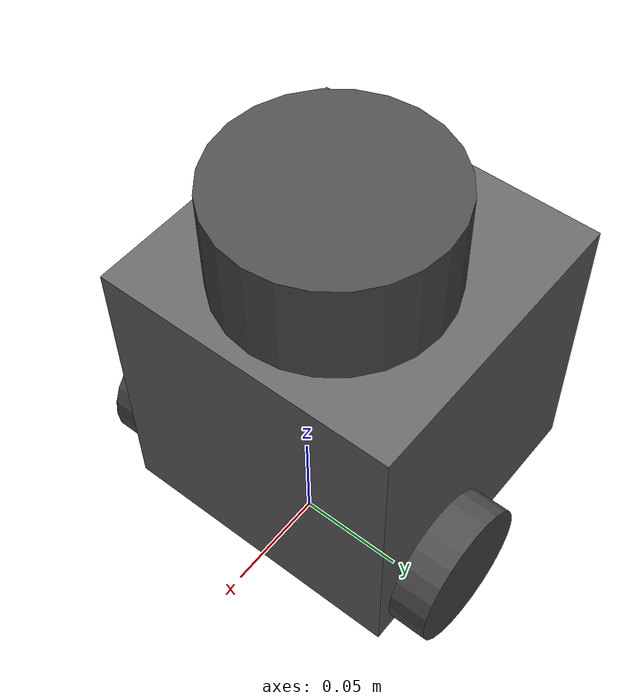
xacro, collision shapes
<?xml version="1.0"?>
<!-- TurtleBot3 Burger — matches gazebo_resources/robots/turtlebot3_burger (model.sdf) -->
<robot name="turtlebot3_burger" xmlns:xacro="http://www.ros.org/wiki/xacro">

  <material name="black">
    <color rgba="0.0 0.0 0.0 1.0"/>
  </material>
  <material name="dark">
    <color rgba="0.3 0.3 0.3 1.0"/>
  </material>
  <material name="light_black">
    <color rgba="0.4 0.4 0.4 1.0"/>
  </material>

  <link name="base_footprint"/>

  <joint name="base_joint" type="fixed">
    <parent link="base_footprint"/>
    <child link="base_link"/>
    <origin xyz="0.0 0.0 0.010" rpy="0 0 0"/>
  </joint>

  <link name="base_link">
    <visual>
      <origin xyz="-0.032 0 0.0" rpy="0 0 0"/>
      <geometry>
        <mesh filename="package://turtlebot3_gazebo/models/turtlebot3_common/meshes/burger_base.dae" scale="0.001 0.001 0.001"/>
      </geometry>
      <material name="light_black"/>
    </visual>
    <collision>
      <origin xyz="-0.032 0 0.070" rpy="0 0 0"/>
      <geometry>
        <box size="0.140 0.140 0.140"/>
      </geometry>
    </collision>
    <inertial>
      <origin xyz="-0.032 0 0.070" rpy="0 0 0"/>
      <mass value="0.82573504"/>
      <inertia ixx="0.72397393" ixy="0.0" ixz="0.0" iyy="0.72397393" iyz="0.0" izz="0.65305016"/>
    </inertial>
  </link>

  <joint name="wheel_left_joint" type="continuous">
    <parent link="base_link"/>
    <child link="wheel_left_link"/>
    <origin xyz="0.0 0.08 0.023" rpy="-1.57 0 0"/>
    <axis xyz="0 0 1"/>
  </joint>

  <link name="wheel_left_link">
    <visual>
      <origin xyz="0 0 0" rpy="1.57 0 0"/>
      <geometry>
        <mesh filename="package://turtlebot3_gazebo/models/turtlebot3_common/meshes/tire.dae" scale="0.001 0.001 0.001"/>
      </geometry>
      <material name="dark"/>
    </visual>
    <collision>
      <origin xyz="0 0 0" rpy="0 0 0"/>
      <geometry>
        <cylinder length="0.018" radius="0.033"/>
      </geometry>
    </collision>
    <inertial>
      <origin xyz="0 0.08 0.023" rpy="-1.57 0 0"/>
      <mass value="0.02849894"/>
      <inertia ixx="0.0018158194" ixy="0.0" ixz="0.0" iyy="0.0032922126" iyz="0.0" izz="0.0018158194"/>
    </inertial>
  </link>

  <joint name="wheel_right_joint" type="continuous">
    <parent link="base_link"/>
    <child link="wheel_right_link"/>
    <origin xyz="0.0 -0.08 0.023" rpy="-1.57 0 0"/>
    <axis xyz="0 0 1"/>
  </joint>

  <link name="wheel_right_link">
    <visual>
      <origin xyz="0 0 0" rpy="1.57 0 0"/>
      <geometry>
        <mesh filename="package://turtlebot3_gazebo/models/turtlebot3_common/meshes/tire.dae" scale="0.001 0.001 0.001"/>
      </geometry>
      <material name="dark"/>
    </visual>
    <collision>
      <origin xyz="0 0 0" rpy="0 0 0"/>
      <geometry>
        <cylinder length="0.018" radius="0.033"/>
      </geometry>
    </collision>
    <inertial>
      <origin xyz="0.0 -0.08 0.023" rpy="-1.57 0 0"/>
      <mass value="0.02849894"/>
      <inertia ixx="0.0018158194" ixy="0.0" ixz="0.0" iyy="0.0032922126" iyz="0.0" izz="0.0018158194"/>
    </inertial>
  </link>

  <joint name="caster_back_joint" type="fixed">
    <parent link="base_link"/>
    <child link="caster_back_link"/>
    <origin xyz="-0.081 0 -0.004" rpy="-1.57 0 0"/>
  </joint>

  <link name="caster_back_link">
    <collision>
      <origin xyz="0 0 0" rpy="0 0 0"/>
      <geometry>
        <sphere radius="0.005"/>
      </geometry>
    </collision>
    <inertial>
      <mass value="0.005"/>
      <inertia ixx="0.001" ixy="0.0" ixz="0.0" iyy="0.001" iyz="0.0" izz="0.001"/>
    </inertial>
  </link>

  <joint name="imu_joint" type="fixed">
    <parent link="base_link"/>
    <child link="imu_link"/>
    <origin xyz="-0.032 0 0.068" rpy="0 0 0"/>
  </joint>

  <link name="imu_link"/>

  <joint name="lidar_joint" type="fixed">
    <parent link="base_link"/>
    <child link="lidar_link"/>
    <origin xyz="-0.032 0 0.171" rpy="0 0 0"/>
  </joint>

  <link name="lidar_link">
    <visual>
      <origin xyz="0 0 0" rpy="0 0 0"/>
      <geometry>
        <mesh filename="package://turtlebot3_gazebo/models/turtlebot3_common/meshes/lds.dae" scale="0.001 0.001 0.001"/>
      </geometry>
      <material name="dark"/>
    </visual>
    <collision>
      <origin xyz="0.012 0 -0.01" rpy="0 0 0"/>
      <geometry>
        <cylinder length="0.055" radius="0.0508"/>
      </geometry>
    </collision>
    <inertial>
      <origin xyz="-0.020 0 0.161" rpy="0 0 0"/>
      <mass value="0.114"/>
      <inertia ixx="0.001" ixy="0.0" ixz="0.0" iyy="0.001" iyz="0.0" izz="0.001"/>
    </inertial>
  </link>

</robot>
